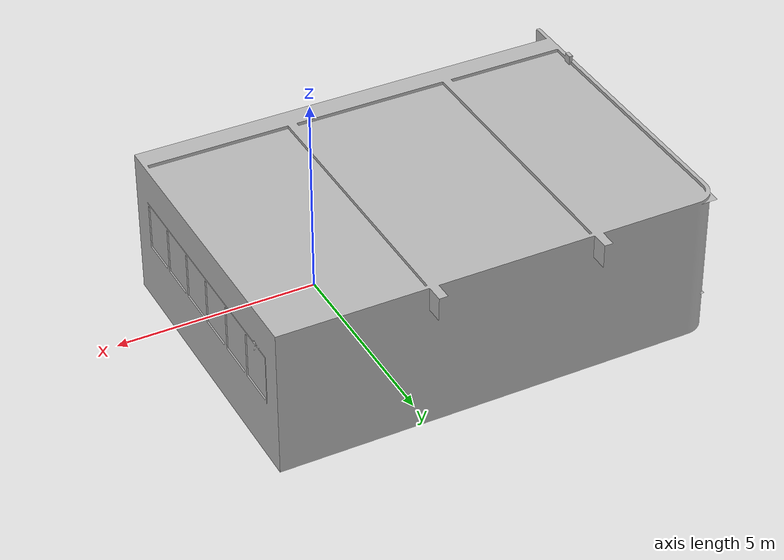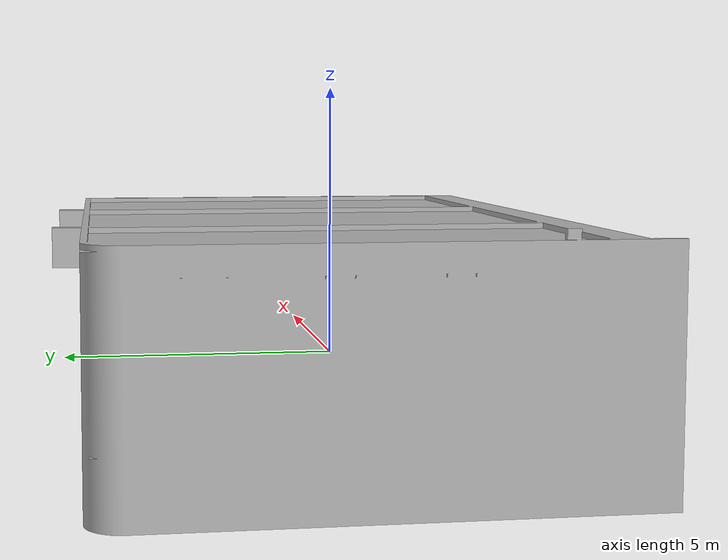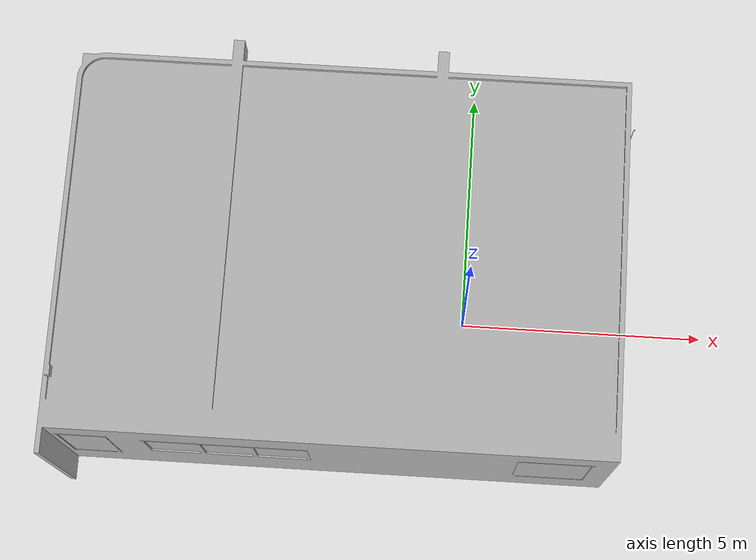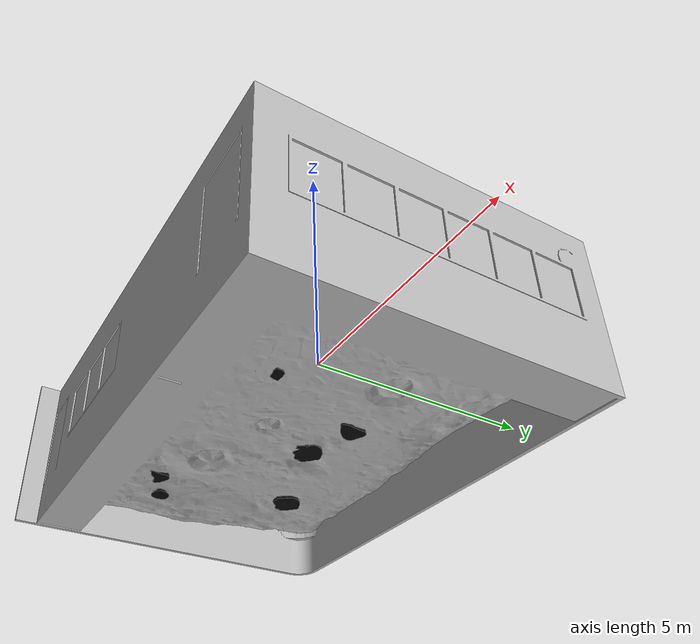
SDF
<?xml version="1.0"?>
<sdf version="1.6">
  <model name="lunalab2024_terrain">
    <pose>3.0 -3.0 0.0 1.5708 0.0 0.0 </pose>
    <static>true</static>

    <link name="lunalab_terrain">

      <collision name="collision">
        <geometry>
          <mesh>
            <uri>model://lunalab2024_terrain/meshes/lunalab2024_terrain.stl</uri>
          </mesh>
        </geometry>
      </collision>

      <visual name="visual">
        <geometry>
          <mesh>
            <uri>model://lunalab2024_terrain/meshes/lunalab2024_terrain.dae</uri>
          </mesh>
        </geometry>
      </visual>
    </link>

    <link name="rock1_001">
    <!-- -Y Z -X with respect to LunaLab -->
    <pose>-3.7 0 -2.5 0 0 0</pose>
      <collision name="collision">
        <geometry>
          <mesh>
            <scale>0.3 0.3 0.3</scale>
            <uri>model://lunalab2024_terrain/meshes/rock_1.stl</uri>
          </mesh>
        </geometry>
      </collision>
      <visual name="visual">
        <geometry>
          <mesh>
            <scale>0.3 0.3 0.3</scale>
            <uri>model://lunalab2024_terrain/meshes/rock_1.dae</uri>
          </mesh>
        </geometry>
      </visual>
    </link>

    <link name="rock2_001">
    <!-- -Y Z -X with respect to LunaLab -->
    <pose>-5 0 -5 0 0 0</pose>
      <collision name="collision">
        <geometry>
          <mesh>
            <scale>0.3 0.3 0.3</scale>
            <uri>model://lunalab2024_terrain/meshes/rock_2.stl</uri>
          </mesh>
        </geometry>
      </collision>
      <visual name="visual">
        <geometry>
          <mesh>
            <scale>0.3 0.3 0.3</scale>
            <uri>model://lunalab2024_terrain/meshes/rock_2.dae</uri>
          </mesh>
        </geometry>
      </visual>
    </link>

    <link name="rock2_002">
    <!-- -Y Z -X with respect to LunaLab -->
    <pose>-9 -0.1 -2 0 0 0</pose>
      <collision name="collision">
        <geometry>
          <mesh>
            <scale>0.3 0.3 0.3</scale>
            <uri>model://lunalab2024_terrain/meshes/rock_2.stl</uri>
          </mesh>
        </geometry>
      </collision>
      <visual name="visual">
        <geometry>
          <mesh>
            <scale>0.3 0.3 0.3</scale>
            <uri>model://lunalab2024_terrain/meshes/rock_2.dae</uri>
          </mesh>
        </geometry>
      </visual>
    </link>

    <link name="rock3_001">
    <!-- -Y Z -X with respect to LunaLab -->
    <pose>-9.7 -0.17 -2.5 0 0 0</pose>
      <collision name="collision">
        <geometry>
          <mesh>
            <scale>0.3 0.3 0.3</scale>
            <uri>model://lunalab2024_terrain/meshes/rock_3.stl</uri>
          </mesh>
        </geometry>
      </collision>
      <visual name="visual">
        <geometry>
          <mesh>
            <scale>0.3 0.3 0.3</scale>
            <uri>model://lunalab2024_terrain/meshes/rock_3.dae</uri>
          </mesh>
        </geometry>
      </visual>
    </link>

    <link name="rock3_002">
    <!-- -Y Z -X with respect to LunaLab -->
    <pose>-5.7 -0.02 -1.5 0 0 0</pose>
      <collision name="collision">
        <geometry>
          <mesh>
            <scale>0.3 0.3 0.3</scale>
            <uri>model://lunalab2024_terrain/meshes/rock_3.stl</uri>
          </mesh>
        </geometry>
      </collision>
      <visual name="visual">
        <geometry>
          <mesh>
            <scale>0.3 0.3 0.3</scale>
            <uri>model://lunalab2024_terrain/meshes/rock_3.dae</uri>
          </mesh>
        </geometry>
      </visual>
    </link>

    <link name="rock4_001">
    <!-- -Y Z -X with respect to LunaLab -->
    <pose>-6.2 0 -4.7 0 0 0</pose>
      <collision name="collision">
        <geometry>
          <mesh>
            <scale>0.3 0.3 0.3</scale>
            <uri>model://lunalab2024_terrain/meshes/rock_4.stl</uri>
          </mesh>
        </geometry>
      </collision>
      <visual name="visual">
        <geometry>
          <mesh>
            <scale>0.3 0.3 0.3</scale>
            <uri>model://lunalab2024_terrain/meshes/rock_4.dae</uri>
          </mesh>
        </geometry>
      </visual>
    </link>

    <link name="rock4_002">
    <!-- -Y Z -X with respect to LunaLab -->
    <pose>-8.9 0 -5.7 0 0 0</pose>
      <collision name="collision">
        <geometry>
          <mesh>
            <scale>0.3 0.3 0.3</scale>
            <uri>model://lunalab2024_terrain/meshes/rock_4.stl</uri>
          </mesh>
        </geometry>
      </collision>
      <visual name="visual">
        <geometry>
          <mesh>
            <scale>0.3 0.3 0.3</scale>
            <uri>model://lunalab2024_terrain/meshes/rock_4.dae</uri>
          </mesh>
        </geometry>
      </visual>
    </link>

    <!-- Make it static to avoid unnecessary physics calculations -->
    <static>1</static>
    <!-- Auto disable will not calculate hysics for objects that are currently not being used. -->
    <allow_auto_disable>1</allow_auto_disable>

  </model>
</sdf>
